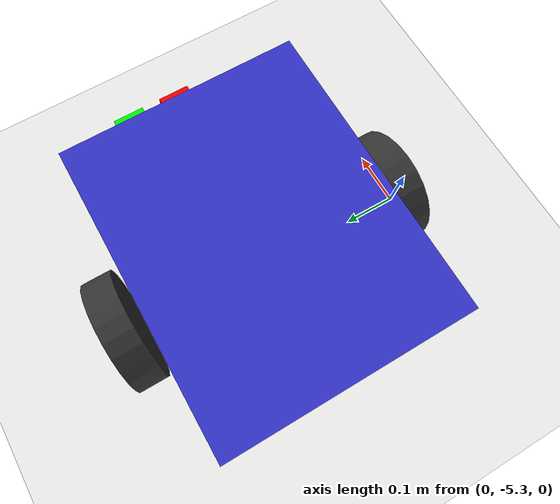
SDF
<?xml version="1.0" ?>
<sdf version="1.6">
  <world name="bounty363_world">
    <include><uri>model://ground_plane</uri></include>
    <include><uri>model://sun</uri></include>
    <physics type="ode">
      <max_step_size>0.001</max_step_size>
      <real_time_update_rate>1000</real_time_update_rate>
    </physics>
    <!-- ========== SPAWN OM1 TEST ROBOT ========== -->
    <include>
      <uri>model://om1_test_robot</uri>
      <pose>0 -5 0 0 0 0</pose>
      <name>om1_robot</name>
    </include>

  </world>
</sdf>

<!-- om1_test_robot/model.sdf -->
<sdf version="1.6">
  <model name="om1_test_robot">

    <!-- Base Link (Robot Body) -->
    <link name="base_link">
      <pose>0 0 0.1 0 0 0</pose>

      <inertial>
        <mass>10.0</mass>
        <inertia>
          <ixx>0.1</ixx>
          <iyy>0.1</iyy>
          <izz>0.1</izz>
        </inertia>
      </inertial>

      <!-- Collision -->
      <collision name="collision">
        <geometry>
          <box>
            <size>0.5 0.4 0.3</size>
          </box>
        </geometry>
      </collision>

      <!-- Visual -->
      <visual name="visual">
        <geometry>
          <box>
            <size>0.5 0.4 0.3</size>
          </box>
        </geometry>
        <material>
          <ambient>0.2 0.2 0.8 1</ambient>
          <diffuse>0.2 0.2 0.8 1</diffuse>
          <specular>0.1 0.1 0.1 1</specular>
        </material>
      </visual>
    </link>

    <!-- Left Wheel -->
    <link name="left_wheel">
      <pose>0 0.25 0.1 1.5707 0 0</pose>

      <inertial>
        <mass>1.0</mass>
        <inertia>
          <ixx>0.01</ixx>
          <iyy>0.01</iyy>
          <izz>0.01</izz>
        </inertia>
      </inertial>

      <collision name="collision">
        <geometry>
          <cylinder>
            <radius>0.1</radius>
            <length>0.05</length>
          </cylinder>
        </geometry>
      </collision>

      <visual name="visual">
        <geometry>
          <cylinder>
            <radius>0.1</radius>
            <length>0.05</length>
          </cylinder>
        </geometry>
        <material>
          <ambient>0.2 0.2 0.2 1</ambient>
          <diffuse>0.2 0.2 0.2 1</diffuse>
        </material>
      </visual>
    </link>

    <!-- Right Wheel -->
    <link name="right_wheel">
      <pose>0 -0.25 0.1 1.5707 0 0</pose>

      <inertial>
        <mass>1.0</mass>
        <inertia>
          <ixx>0.01</ixx>
          <iyy>0.01</iyy>
          <izz>0.01</izz>
        </inertia>
      </inertial>

      <collision name="collision">
        <geometry>
          <cylinder>
            <radius>0.1</radius>
            <length>0.05</length>
          </cylinder>
        </geometry>
      </collision>

      <visual name="visual">
        <geometry>
          <cylinder>
            <radius>0.1</radius>
            <length>0.05</length>
          </cylinder>
        </geometry>
        <material>
          <ambient>0.2 0.2 0.2 1</ambient>
          <diffuse>0.2 0.2 0.2 1</diffuse>
        </material>
      </visual>
    </link>

    <!-- Caster Wheel (for stability) -->
    <link name="caster">
      <pose>0.2 0 0.05 0 0 0</pose>

      <inertial>
        <mass>0.5</mass>
        <inertia>
          <ixx>0.001</ixx>
          <iyy>0.001</iyy>
          <izz>0.001</izz>
        </inertia>
      </inertial>

      <collision name="collision">
        <geometry>
          <sphere>
            <radius>0.05</radius>
          </sphere>
        </geometry>
      </collision>

      <visual name="visual">
        <geometry>
          <sphere>
            <radius>0.05</radius>
          </sphere>
        </geometry>
        <material>
          <ambient>0.3 0.3 0.3 1</ambient>
          <diffuse>0.3 0.3 0.3 1</diffuse>
        </material>
      </visual>
    </link>

    <!-- Camera Link -->
    <link name="camera_link">
      <pose>0.25 0 0.2 0 0 0</pose>

      <inertial>
        <mass>0.1</mass>
        <inertia>
          <ixx>0.0001</ixx>
          <iyy>0.0001</iyy>
          <izz>0.0001</izz>
        </inertia>
      </inertial>

      <visual name="visual">
        <geometry>
          <box>
            <size>0.05 0.05 0.05</size>
          </box>
        </geometry>
        <material>
          <ambient>1 0 0 1</ambient>
          <diffuse>1 0 0 1</diffuse>
        </material>
      </visual>

      <!-- RGB Camera Sensor -->
      <sensor name="camera" type="camera">
        <camera>
          <horizontal_fov>1.047</horizontal_fov>
          <image>
            <width>640</width>
            <height>480</height>
          </image>
          <clip>
            <near>0.1</near>
            <far>100</far>
          </clip>
        </camera>
        <always_on>1</always_on>
        <update_rate>30</update_rate>
        <visualize>true</visualize>
        <topic>/om1_test_robot/camera/image_raw</topic>
      </sensor>
    </link>

    <!-- Depth Camera Link -->
    <link name="depth_camera_link">
      <pose>0.25 0.08 0.2 0 0 0</pose>

      <inertial>
        <mass>0.1</mass>
        <inertia>
          <ixx>0.0001</ixx>
          <iyy>0.0001</iyy>
          <izz>0.0001</izz>
        </inertia>
      </inertial>

      <visual name="visual">
        <geometry>
          <box>
            <size>0.05 0.05 0.05</size>
          </box>
        </geometry>
        <material>
          <ambient>0 1 0 1</ambient>
          <diffuse>0 1 0 1</diffuse>
        </material>
      </visual>

      <!-- Depth Camera Sensor -->
      <sensor name="depth_camera" type="depth">
        <camera>
          <horizontal_fov>1.047</horizontal_fov>
          <image>
            <width>640</width>
            <height>480</height>
            <format>R8G8B8</format>
          </image>
          <clip>
            <near>0.1</near>
            <far>10</far>
          </clip>
        </camera>
        <always_on>1</always_on>
        <update_rate>20</update_rate>
        <visualize>true</visualize>
        <topic>/om1_test_robot/depth_camera/depth</topic>
      </sensor>
    </link>

    <!-- IMU Link -->
    <link name="imu_link">
      <pose>0 0 0.15 0 0 0</pose>

      <inertial>
        <mass>0.01</mass>
        <inertia>
          <ixx>0.00001</ixx>
          <iyy>0.00001</iyy>
          <izz>0.00001</izz>
        </inertia>
      </inertial>

      <visual name="visual">
        <geometry>
          <box>
            <size>0.02 0.02 0.02</size>
          </box>
        </geometry>
        <material>
          <ambient>1 1 0 1</ambient>
          <diffuse>1 1 0 1</diffuse>
        </material>
      </visual>

      <!-- IMU Sensor -->
      <sensor name="imu" type="imu">
        <always_on>1</always_on>
        <update_rate>100</update_rate>
        <visualize>true</visualize>
        <topic>/om1_test_robot/imu/data</topic>
        <imu>
          <angular_velocity>
            <x>
              <noise type="gaussian">
                <mean>0.0</mean>
                <stddev>0.0002</stddev>
              </noise>
            </x>
            <y>
              <noise type="gaussian">
                <mean>0.0</mean>
                <stddev>0.0002</stddev>
              </noise>
            </y>
            <z>
              <noise type="gaussian">
                <mean>0.0</mean>
                <stddev>0.0002</stddev>
              </noise>
            </z>
          </angular_velocity>
          <linear_acceleration>
            <x>
              <noise type="gaussian">
                <mean>0.0</mean>
                <stddev>0.01</stddev>
              </noise>
            </x>
            <y>
              <noise type="gaussian">
                <mean>0.0</mean>
                <stddev>0.01</stddev>
              </noise>
            </y>
            <z>
              <noise type="gaussian">
                <mean>0.0</mean>
                <stddev>0.01</stddev>
              </noise>
            </z>
          </linear_acceleration>
        </imu>
      </sensor>
    </link>

    <!-- Joints -->

    <!-- Left Wheel Joint -->
    <joint name="left_wheel_joint" type="revolute">
      <parent>base_link</parent>
      <child>left_wheel</child>
      <axis>
        <xyz>0 1 0</xyz>
        <limit>
          <lower>-1e16</lower>
          <upper>1e16</upper>
        </limit>
      </axis>
    </joint>

    <!-- Right Wheel Joint -->
    <joint name="right_wheel_joint" type="revolute">
      <parent>base_link</parent>
      <child>right_wheel</child>
      <axis>
        <xyz>0 1 0</xyz>
        <limit>
          <lower>-1e16</lower>
          <upper>1e16</upper>
        </limit>
      </axis>
    </joint>

    <!-- Caster Joint -->
    <joint name="caster_joint" type="fixed">
      <parent>base_link</parent>
      <child>caster</child>
    </joint>

    <!-- Camera Joint -->
    <joint name="camera_joint" type="fixed">
      <parent>base_link</parent>
      <child>camera_link</child>
    </joint>

    <!-- Depth Camera Joint -->
    <joint name="depth_camera_joint" type="fixed">
      <parent>base_link</parent>
      <child>depth_camera_link</child>
    </joint>

    <!-- IMU Joint -->
    <joint name="imu_joint" type="fixed">
      <parent>base_link</parent>
      <child>imu_link</child>
    </joint>

    <!-- Differential Drive Plugin -->
    <plugin name="differential_drive_controller" filename="libgazebo_ros_diff_drive.so">
      <update_rate>50</update_rate>
      <left_joint>left_wheel_joint</left_joint>
      <right_joint>right_wheel_joint</right_joint>
      <wheel_separation>0.5</wheel_separation>
      <wheel_diameter>0.2</wheel_diameter>
      <max_wheel_torque>20</max_wheel_torque>
      <command_topic>/om1_test_robot/cmd_vel</command_topic>
      <odometry_topic>/om1_test_robot/odom</odometry_topic>
      <odometry_frame>odom</odometry_frame>
      <robot_base_frame>base_link</robot_base_frame>
      <publish_odom>true</publish_odom>
      <publish_odom_tf>true</publish_odom_tf>
      <publish_wheel_tf>false</publish_wheel_tf>
    </plugin>

  </model>
</sdf>
